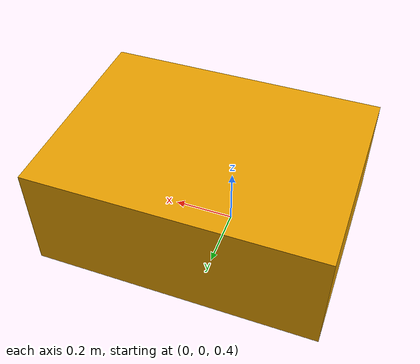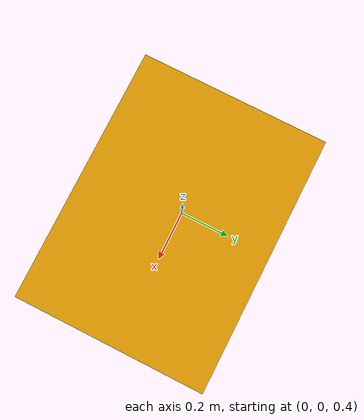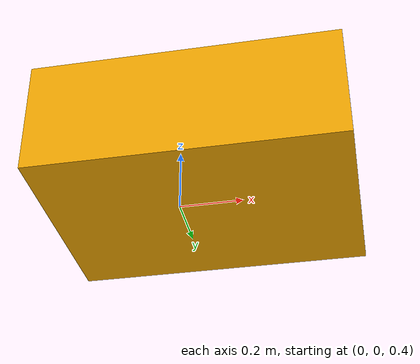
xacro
<?xml version="1.0"?>
<robot xmlns:xacro="http://www.ros.org/wiki/xacro">
  <link name="chassis">
    <visual>
      <material name="amr_body_color" />
      <origin rpy="0 0 0" xyz="0.078 0 0.545"/>
      <geometry>
        <box size="0.95 0.7 0.37 "/>
      </geometry>
    </visual>

    <collision>
      <origin rpy="0 0 0" xyz="0.078 0 0.545"/>
      <geometry>
        <box size="0.95 0.7 0.37 "/>
      </geometry>
    </collision>
  </link>

</robot>
